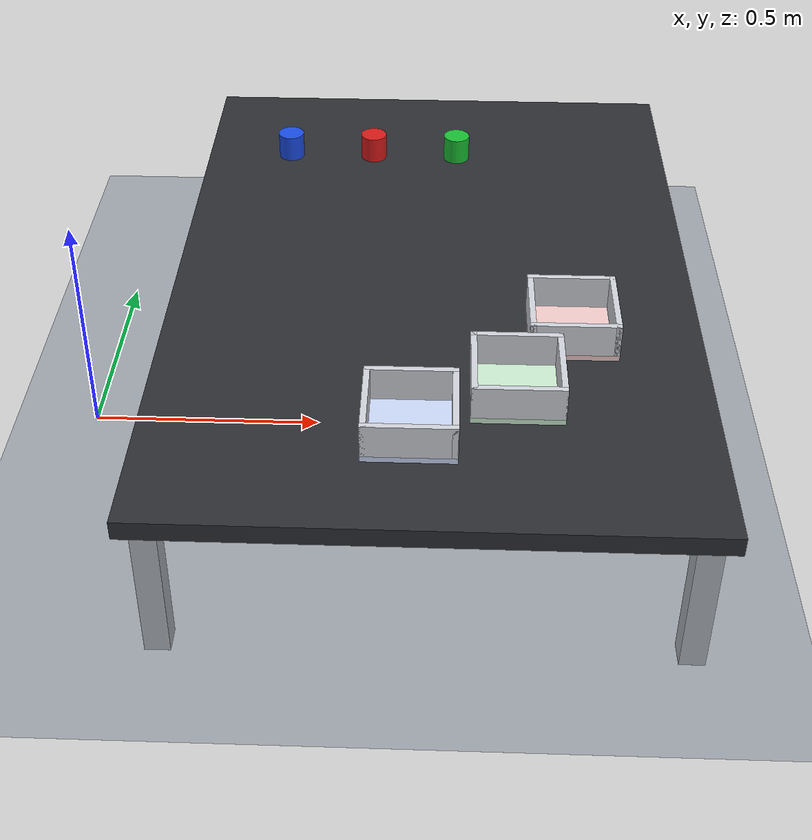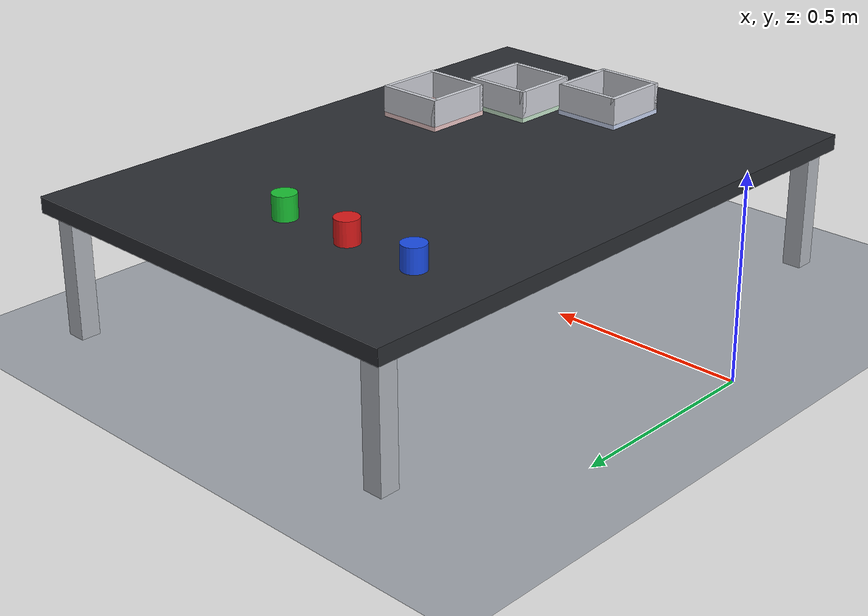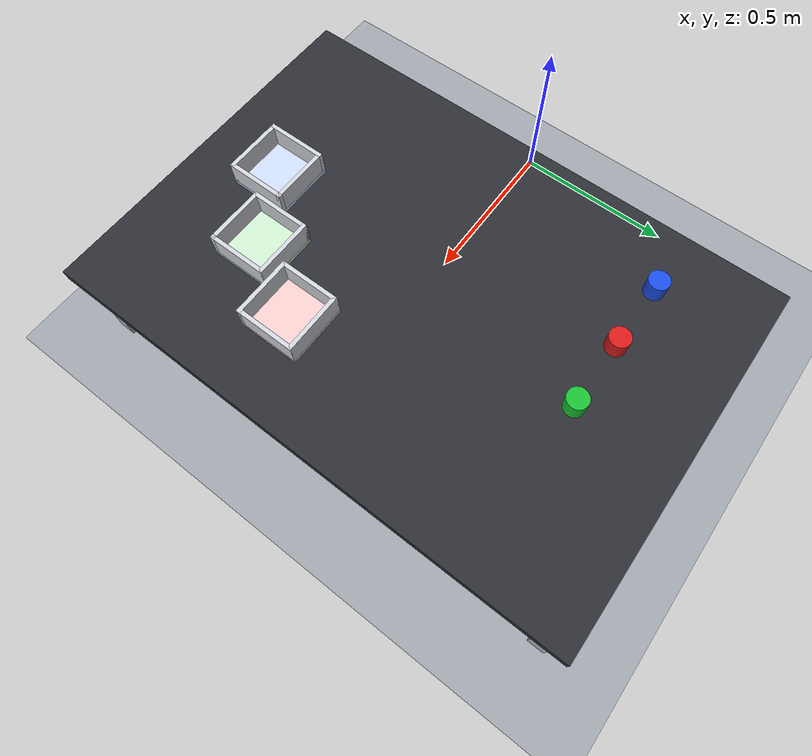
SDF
<?xml version="1.0"?>
<sdf version="1.9">
  <world name="lab_world">
    <gravity>0 0 -9.8</gravity>
    <physics type="ode">
      <max_step_size>0.001</max_step_size>
      <real_time_factor>1</real_time_factor>
      <real_time_update_rate>1000</real_time_update_rate>
    </physics>
    <scene>
      <ambient>0.55 0.55 0.55 1</ambient>
      <background>0.93 0.94 0.96 1</background>
      <shadows>true</shadows>
    </scene>

    <light name="sun" type="directional">
      <pose>0 0 10 0 0 0</pose>
      <cast_shadows>true</cast_shadows>
      <intensity>1</intensity>
      <direction>-0.4 0.2 -0.9</direction>
      <diffuse>0.85 0.85 0.85 1</diffuse>
      <specular>0.2 0.2 0.2 1</specular>
    </light>

    <!-- Floor -->
    <model name="floor">
      <static>true</static>
      <link name="link">
        <collision name="collision">
          <geometry><plane><normal>0 0 1</normal><size>100 100</size></plane></geometry>
        </collision>
        <visual name="visual">
          <geometry><plane><normal>0 0 1</normal><size>100 100</size></plane></geometry>
          <material>
            <ambient>0.62 0.64 0.67 1</ambient>
            <diffuse>0.62 0.64 0.67 1</diffuse>
            <specular>0.05 0.05 0.05 1</specular>
          </material>
        </visual>
      </link>
    </model>

    <!-- Work table: graphite top, steel legs. Top surface at z = 0.35. -->
    <model name="work_table">
      <static>true</static>
      <pose>0.75 0.1 0 0 0 0</pose>
      <link name="link">
        <collision name="top_collision">
          <pose>0 0 0.33 0 0 0</pose>
          <geometry><box><size>1.1 1.6 0.04</size></box></geometry>
        </collision>
        <visual name="top_visual">
          <pose>0 0 0.33 0 0 0</pose>
          <geometry><box><size>1.1 1.6 0.04</size></box></geometry>
          <material>
            <ambient>0.17 0.18 0.2 1</ambient>
            <diffuse>0.17 0.18 0.2 1</diffuse>
            <specular>0.1 0.1 0.1 1</specular>
          </material>
        </visual>
        <visual name="leg_a">
          <pose>0.5 0.75 0.155 0 0 0</pose>
          <geometry><box><size>0.05 0.05 0.31</size></box></geometry>
          <material><ambient>0.7 0.72 0.75 1</ambient><diffuse>0.7 0.72 0.75 1</diffuse></material>
        </visual>
        <visual name="leg_b">
          <pose>-0.5 0.75 0.155 0 0 0</pose>
          <geometry><box><size>0.05 0.05 0.31</size></box></geometry>
          <material><ambient>0.7 0.72 0.75 1</ambient><diffuse>0.7 0.72 0.75 1</diffuse></material>
        </visual>
        <visual name="leg_c">
          <pose>0.5 -0.75 0.155 0 0 0</pose>
          <geometry><box><size>0.05 0.05 0.31</size></box></geometry>
          <material><ambient>0.7 0.72 0.75 1</ambient><diffuse>0.7 0.72 0.75 1</diffuse></material>
        </visual>
        <visual name="leg_d">
          <pose>-0.5 -0.75 0.155 0 0 0</pose>
          <geometry><box><size>0.05 0.05 0.31</size></box></geometry>
          <material><ambient>0.7 0.72 0.75 1</ambient></material>
        </visual>
      </link>
    </model>

    <!-- Colour bins (one per colour), behind the robot. Floors are tinted. -->
    <model name="bin_red">
      <static>true</static>
      <pose>1.035 -0.116 0.35 0 0 0</pose>
      <link name="link">
        <collision name="floor_collision"><pose>0 0 0.006 0 0 0</pose><geometry><box><size>0.18 0.18 0.012</size></box></geometry></collision>
        <visual name="floor_visual"><pose>0 0 0.006 0 0 0</pose><geometry><box><size>0.18 0.18 0.012</size></box></geometry><material><ambient>0.95 0.80 0.80 1</ambient><diffuse>0.95 0.80 0.80 1</diffuse></material></visual>
        <collision name="wall_n_collision"><pose>0 0.08399999999999999 0.047 0 0 0</pose><geometry><box><size>0.18 0.012 0.07</size></box></geometry></collision>
        <visual name="wall_n_visual"><pose>0 0.08399999999999999 0.047 0 0 0</pose><geometry><box><size>0.18 0.012 0.07</size></box></geometry><material><ambient>0.82 0.83 0.86 1</ambient><diffuse>0.82 0.83 0.86 1</diffuse></material></visual>
        <collision name="wall_s_collision"><pose>0 -0.08399999999999999 0.047 0 0 0</pose><geometry><box><size>0.18 0.012 0.07</size></box></geometry></collision>
        <visual name="wall_s_visual"><pose>0 -0.08399999999999999 0.047 0 0 0</pose><geometry><box><size>0.18 0.012 0.07</size></box></geometry><material><ambient>0.82 0.83 0.86 1</ambient><diffuse>0.82 0.83 0.86 1</diffuse></material></visual>
        <collision name="wall_e_collision"><pose>0.08399999999999999 0 0.047 0 0 0</pose><geometry><box><size>0.012 0.18 0.07</size></box></geometry></collision>
        <visual name="wall_e_visual"><pose>0.08399999999999999 0 0.047 0 0 0</pose><geometry><box><size>0.012 0.18 0.07</size></box></geometry><material><ambient>0.82 0.83 0.86 1</ambient><diffuse>0.82 0.83 0.86 1</diffuse></material></visual>
        <collision name="wall_w_collision"><pose>-0.08399999999999999 0 0.047 0 0 0</pose><geometry><box><size>0.012 0.18 0.07</size></box></geometry></collision>
        <visual name="wall_w_visual"><pose>-0.08399999999999999 0 0.047 0 0 0</pose><geometry><box><size>0.012 0.18 0.07</size></box></geometry><material><ambient>0.82 0.83 0.86 1</ambient><diffuse>0.82 0.83 0.86 1</diffuse></material></visual>
      </link>
    </model>

    <model name="bin_green">
      <static>true</static>
      <pose>0.918 -0.318 0.35 0 0 0</pose>
      <link name="link">
        <collision name="floor_collision"><pose>0 0 0.006 0 0 0</pose><geometry><box><size>0.18 0.18 0.012</size></box></geometry></collision>
        <visual name="floor_visual"><pose>0 0 0.006 0 0 0</pose><geometry><box><size>0.18 0.18 0.012</size></box></geometry><material><ambient>0.80 0.93 0.82 1</ambient><diffuse>0.80 0.93 0.82 1</diffuse></material></visual>
        <collision name="wall_n_collision"><pose>0 0.08399999999999999 0.047 0 0 0</pose><geometry><box><size>0.18 0.012 0.07</size></box></geometry></collision>
        <visual name="wall_n_visual"><pose>0 0.08399999999999999 0.047 0 0 0</pose><geometry><box><size>0.18 0.012 0.07</size></box></geometry><material><ambient>0.82 0.83 0.86 1</ambient><diffuse>0.82 0.83 0.86 1</diffuse></material></visual>
        <collision name="wall_s_collision"><pose>0 -0.08399999999999999 0.047 0 0 0</pose><geometry><box><size>0.18 0.012 0.07</size></box></geometry></collision>
        <visual name="wall_s_visual"><pose>0 -0.08399999999999999 0.047 0 0 0</pose><geometry><box><size>0.18 0.012 0.07</size></box></geometry><material><ambient>0.82 0.83 0.86 1</ambient><diffuse>0.82 0.83 0.86 1</diffuse></material></visual>
        <collision name="wall_e_collision"><pose>0.08399999999999999 0 0.047 0 0 0</pose><geometry><box><size>0.012 0.18 0.07</size></box></geometry></collision>
        <visual name="wall_e_visual"><pose>0.08399999999999999 0 0.047 0 0 0</pose><geometry><box><size>0.012 0.18 0.07</size></box></geometry><material><ambient>0.82 0.83 0.86 1</ambient><diffuse>0.82 0.83 0.86 1</diffuse></material></visual>
        <collision name="wall_w_collision"><pose>-0.08399999999999999 0 0.047 0 0 0</pose><geometry><box><size>0.012 0.18 0.07</size></box></geometry></collision>
        <visual name="wall_w_visual"><pose>-0.08399999999999999 0 0.047 0 0 0</pose><geometry><box><size>0.012 0.18 0.07</size></box></geometry><material><ambient>0.82 0.83 0.86 1</ambient><diffuse>0.82 0.83 0.86 1</diffuse></material></visual>
      </link>
    </model>

    <model name="bin_blue">
      <static>true</static>
      <pose>0.716 -0.435 0.35 0 0 0</pose>
      <link name="link">
        <collision name="floor_collision"><pose>0 0 0.006 0 0 0</pose><geometry><box><size>0.18 0.18 0.012</size></box></geometry></collision>
        <visual name="floor_visual"><pose>0 0 0.006 0 0 0</pose><geometry><box><size>0.18 0.18 0.012</size></box></geometry><material><ambient>0.80 0.85 0.97 1</ambient><diffuse>0.80 0.85 0.97 1</diffuse></material></visual>
        <collision name="wall_n_collision"><pose>0 0.08399999999999999 0.047 0 0 0</pose><geometry><box><size>0.18 0.012 0.07</size></box></geometry></collision>
        <visual name="wall_n_visual"><pose>0 0.08399999999999999 0.047 0 0 0</pose><geometry><box><size>0.18 0.012 0.07</size></box></geometry><material><ambient>0.82 0.83 0.86 1</ambient><diffuse>0.82 0.83 0.86 1</diffuse></material></visual>
        <collision name="wall_s_collision"><pose>0 -0.08399999999999999 0.047 0 0 0</pose><geometry><box><size>0.18 0.012 0.07</size></box></geometry></collision>
        <visual name="wall_s_visual"><pose>0 -0.08399999999999999 0.047 0 0 0</pose><geometry><box><size>0.18 0.012 0.07</size></box></geometry><material><ambient>0.82 0.83 0.86 1</ambient><diffuse>0.82 0.83 0.86 1</diffuse></material></visual>
        <collision name="wall_e_collision"><pose>0.08399999999999999 0 0.047 0 0 0</pose><geometry><box><size>0.012 0.18 0.07</size></box></geometry></collision>
        <visual name="wall_e_visual"><pose>0.08399999999999999 0 0.047 0 0 0</pose><geometry><box><size>0.012 0.18 0.07</size></box></geometry><material><ambient>0.82 0.83 0.86 1</ambient><diffuse>0.82 0.83 0.86 1</diffuse></material></visual>
        <collision name="wall_w_collision"><pose>-0.08399999999999999 0 0.047 0 0 0</pose><geometry><box><size>0.012 0.18 0.07</size></box></geometry></collision>
        <visual name="wall_w_visual"><pose>-0.08399999999999999 0 0.047 0 0 0</pose><geometry><box><size>0.012 0.18 0.07</size></box></geometry><material><ambient>0.82 0.83 0.86 1</ambient><diffuse>0.82 0.83 0.86 1</diffuse></material></visual>
      </link>
    </model>

    <!-- Pucks: 60 mm diameter, 60 mm tall, resting on the table (z = 0.38). -->
    <model name="red_puck">
      <pose>0.6 0.6 0.38 0 0 0</pose>
      <link name="link">
        <inertial>
          <mass>0.1</mass>
          <inertia>
            <ixx>5.25e-5</ixx><iyy>5.25e-5</iyy><izz>4.5e-5</izz>
            <ixy>0</ixy><ixz>0</ixz><iyz>0</iyz>
          </inertia>
        </inertial>
        <collision name="collision">
          <geometry><cylinder><radius>0.03</radius><length>0.06</length></cylinder></geometry>
          <surface><friction><ode><mu>1.5</mu><mu2>1.5</mu2></ode></friction></surface>
        </collision>
        <visual name="visual">
          <geometry><cylinder><radius>0.03</radius><length>0.06</length></cylinder></geometry>
          <material>
            <ambient>0.85 0.1 0.1 1</ambient><diffuse>0.85 0.1 0.1 1</diffuse>
            <specular>0.1 0.1 0.1 1</specular>
          </material>
        </visual>
      </link>
    </model>

    <model name="green_puck">
      <pose>0.8 0.6 0.38 0 0 0</pose>
      <link name="link">
        <inertial>
          <mass>0.1</mass>
          <inertia>
            <ixx>5.25e-5</ixx><iyy>5.25e-5</iyy><izz>4.5e-5</izz>
            <ixy>0</ixy><ixz>0</ixz><iyz>0</iyz>
          </inertia>
        </inertial>
        <collision name="collision">
          <geometry><cylinder><radius>0.03</radius><length>0.06</length></cylinder></geometry>
          <surface><friction><ode><mu>1.5</mu><mu2>1.5</mu2></ode></friction></surface>
        </collision>
        <visual name="visual">
          <geometry><cylinder><radius>0.03</radius><length>0.06</length></cylinder></geometry>
          <material>
            <ambient>0.1 0.75 0.2 1</ambient><diffuse>0.1 0.75 0.2 1</diffuse>
            <specular>0.1 0.1 0.1 1</specular>
          </material>
        </visual>
      </link>
    </model>

    <model name="blue_puck">
      <pose>0.4 0.6 0.38 0 0 0</pose>
      <link name="link">
        <inertial>
          <mass>0.1</mass>
          <inertia>
            <ixx>5.25e-5</ixx><iyy>5.25e-5</iyy><izz>4.5e-5</izz>
            <ixy>0</ixy><ixz>0</ixz><iyz>0</iyz>
          </inertia>
        </inertial>
        <collision name="collision">
          <geometry><cylinder><radius>0.03</radius><length>0.06</length></cylinder></geometry>
          <surface><friction><ode><mu>1.5</mu><mu2>1.5</mu2></ode></friction></surface>
        </collision>
        <visual name="visual">
          <geometry><cylinder><radius>0.03</radius><length>0.06</length></cylinder></geometry>
          <material>
            <ambient>0.1 0.3 0.9 1</ambient><diffuse>0.1 0.3 0.9 1</diffuse>
            <specular>0.1 0.1 0.1 1</specular>
          </material>
        </visual>
      </link>
    </model>
  </world>
</sdf>
